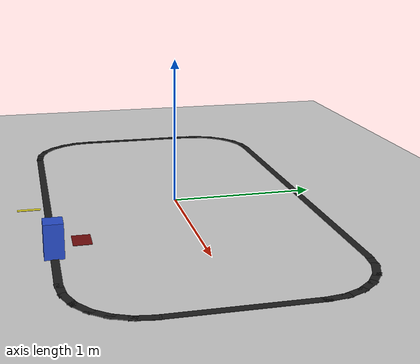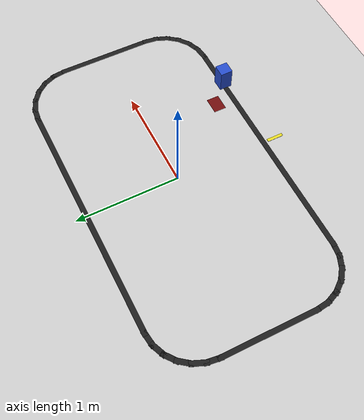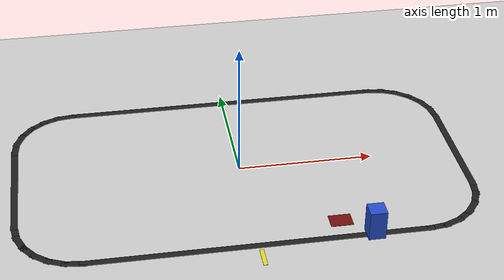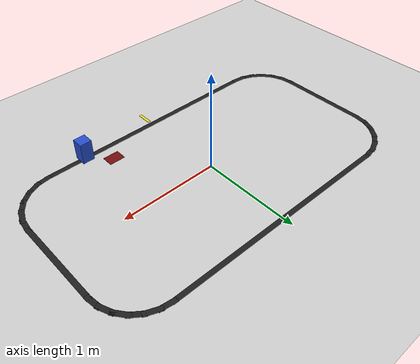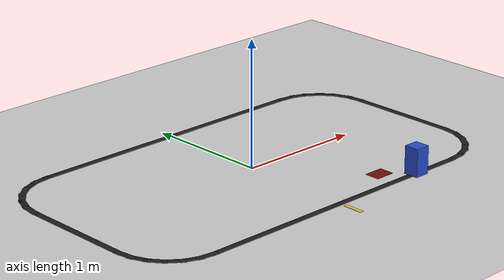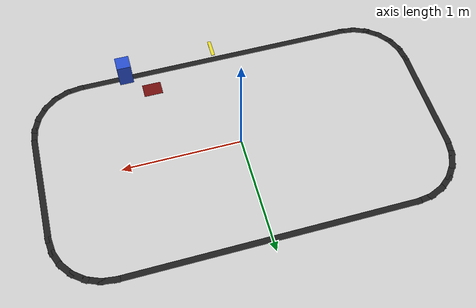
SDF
<?xml version="1.0"?>
<sdf version="1.6">
  <world name="line_following">

    <physics type="ode">
      <real_time_update_rate>1000.0</real_time_update_rate>
      <max_step_size>0.001</max_step_size>
      <real_time_factor>1</real_time_factor>
    </physics>

    <!-- 地面：Gazebo/Grey（diffuse 0.7）+ 摩擦 mu=100/mu2=50，比自建平面抓地更好，
         与黑线 FlatBlack（0.1）形成 7:1 亮度对比，D8 阈值分割余量充足 -->
    <include><uri>model://ground_plane</uri></include>
    <include><uri>model://sun</uri></include>

    <scene>
      <ambient>0.5 0.5 0.5 1</ambient>
      <shadows>false</shadows>
    </scene>

    <plugin name="gazebo_ros_state" filename="libgazebo_ros_state.so">
      <ros><namespace>/gazebo</namespace></ros>
    </plugin>
    <plugin name="gazebo_ros_properties" filename="libgazebo_ros_properties.so">
      <ros><namespace>/gazebo</namespace></ros>
    </plugin>

    <!-- ============ 巡线黑线：一个 static model、一个 link、28 个 visual ============ -->
    <model name="line_track">
      <static>true</static>
      <link name="line">
        <visual name="seg_00">
          <pose>0.0000 -0.9000 0.0015 0 0 0.000000</pose>
          <geometry><box><size>2.4500 0.050 0.0030</size></box></geometry>
          <material><script>
            <uri>file://media/materials/scripts/gazebo.material</uri><name>Gazebo/FlatBlack</name>
          </script></material>
        </visual>
        <visual name="seg_01">
          <pose>1.2582 -0.8923 0.0015 0 0 0.130900</pose>
          <geometry><box><size>0.1675 0.050 0.0030</size></box></geometry>
          <material><script>
            <uri>file://media/materials/scripts/gazebo.material</uri><name>Gazebo/FlatBlack</name>
          </script></material>
        </visual>
        <visual name="seg_02">
          <pose>1.3707 -0.8622 0.0015 0 0 0.392699</pose>
          <geometry><box><size>0.1675 0.050 0.0030</size></box></geometry>
          <material><script>
            <uri>file://media/materials/scripts/gazebo.material</uri><name>Gazebo/FlatBlack</name>
          </script></material>
        </visual>
        <visual name="seg_03">
          <pose>1.4716 -0.8040 0.0015 0 0 0.654498</pose>
          <geometry><box><size>0.1675 0.050 0.0030</size></box></geometry>
          <material><script>
            <uri>file://media/materials/scripts/gazebo.material</uri><name>Gazebo/FlatBlack</name>
          </script></material>
        </visual>
        <visual name="seg_04">
          <pose>1.5540 -0.7216 0.0015 0 0 0.916298</pose>
          <geometry><box><size>0.1675 0.050 0.0030</size></box></geometry>
          <material><script>
            <uri>file://media/materials/scripts/gazebo.material</uri><name>Gazebo/FlatBlack</name>
          </script></material>
        </visual>
        <visual name="seg_05">
          <pose>1.6122 -0.6207 0.0015 0 0 1.178097</pose>
          <geometry><box><size>0.1675 0.050 0.0030</size></box></geometry>
          <material><script>
            <uri>file://media/materials/scripts/gazebo.material</uri><name>Gazebo/FlatBlack</name>
          </script></material>
        </visual>
        <visual name="seg_06">
          <pose>1.6423 -0.5082 0.0015 0 0 1.439897</pose>
          <geometry><box><size>0.1675 0.050 0.0030</size></box></geometry>
          <material><script>
            <uri>file://media/materials/scripts/gazebo.material</uri><name>Gazebo/FlatBlack</name>
          </script></material>
        </visual>
        <visual name="seg_07">
          <pose>1.6500 0.0000 0.0015 0 0 1.570796</pose>
          <geometry><box><size>0.9500 0.050 0.0030</size></box></geometry>
          <material><script>
            <uri>file://media/materials/scripts/gazebo.material</uri><name>Gazebo/FlatBlack</name>
          </script></material>
        </visual>
        <visual name="seg_08">
          <pose>1.6423 0.5082 0.0015 0 0 1.701696</pose>
          <geometry><box><size>0.1675 0.050 0.0030</size></box></geometry>
          <material><script>
            <uri>file://media/materials/scripts/gazebo.material</uri><name>Gazebo/FlatBlack</name>
          </script></material>
        </visual>
        <visual name="seg_09">
          <pose>1.6122 0.6207 0.0015 0 0 1.963495</pose>
          <geometry><box><size>0.1675 0.050 0.0030</size></box></geometry>
          <material><script>
            <uri>file://media/materials/scripts/gazebo.material</uri><name>Gazebo/FlatBlack</name>
          </script></material>
        </visual>
        <visual name="seg_10">
          <pose>1.5540 0.7216 0.0015 0 0 2.225295</pose>
          <geometry><box><size>0.1675 0.050 0.0030</size></box></geometry>
          <material><script>
            <uri>file://media/materials/scripts/gazebo.material</uri><name>Gazebo/FlatBlack</name>
          </script></material>
        </visual>
        <visual name="seg_11">
          <pose>1.4716 0.8040 0.0015 0 0 2.487094</pose>
          <geometry><box><size>0.1675 0.050 0.0030</size></box></geometry>
          <material><script>
            <uri>file://media/materials/scripts/gazebo.material</uri><name>Gazebo/FlatBlack</name>
          </script></material>
        </visual>
        <visual name="seg_12">
          <pose>1.3707 0.8622 0.0015 0 0 2.748894</pose>
          <geometry><box><size>0.1675 0.050 0.0030</size></box></geometry>
          <material><script>
            <uri>file://media/materials/scripts/gazebo.material</uri><name>Gazebo/FlatBlack</name>
          </script></material>
        </visual>
        <visual name="seg_13">
          <pose>1.2582 0.8923 0.0015 0 0 3.010693</pose>
          <geometry><box><size>0.1675 0.050 0.0030</size></box></geometry>
          <material><script>
            <uri>file://media/materials/scripts/gazebo.material</uri><name>Gazebo/FlatBlack</name>
          </script></material>
        </visual>
        <visual name="seg_14">
          <pose>0.0000 0.9000 0.0015 0 0 3.141593</pose>
          <geometry><box><size>2.4500 0.050 0.0030</size></box></geometry>
          <material><script>
            <uri>file://media/materials/scripts/gazebo.material</uri><name>Gazebo/FlatBlack</name>
          </script></material>
        </visual>
        <visual name="seg_15">
          <pose>-1.2582 0.8923 0.0015 0 0 -3.010693</pose>
          <geometry><box><size>0.1675 0.050 0.0030</size></box></geometry>
          <material><script>
            <uri>file://media/materials/scripts/gazebo.material</uri><name>Gazebo/FlatBlack</name>
          </script></material>
        </visual>
        <visual name="seg_16">
          <pose>-1.3707 0.8622 0.0015 0 0 -2.748894</pose>
          <geometry><box><size>0.1675 0.050 0.0030</size></box></geometry>
          <material><script>
            <uri>file://media/materials/scripts/gazebo.material</uri><name>Gazebo/FlatBlack</name>
          </script></material>
        </visual>
        <visual name="seg_17">
          <pose>-1.4716 0.8040 0.0015 0 0 -2.487094</pose>
          <geometry><box><size>0.1675 0.050 0.0030</size></box></geometry>
          <material><script>
            <uri>file://media/materials/scripts/gazebo.material</uri><name>Gazebo/FlatBlack</name>
          </script></material>
        </visual>
        <visual name="seg_18">
          <pose>-1.5540 0.7216 0.0015 0 0 -2.225295</pose>
          <geometry><box><size>0.1675 0.050 0.0030</size></box></geometry>
          <material><script>
            <uri>file://media/materials/scripts/gazebo.material</uri><name>Gazebo/FlatBlack</name>
          </script></material>
        </visual>
        <visual name="seg_19">
          <pose>-1.6122 0.6207 0.0015 0 0 -1.963495</pose>
          <geometry><box><size>0.1675 0.050 0.0030</size></box></geometry>
          <material><script>
            <uri>file://media/materials/scripts/gazebo.material</uri><name>Gazebo/FlatBlack</name>
          </script></material>
        </visual>
        <visual name="seg_20">
          <pose>-1.6423 0.5082 0.0015 0 0 -1.701696</pose>
          <geometry><box><size>0.1675 0.050 0.0030</size></box></geometry>
          <material><script>
            <uri>file://media/materials/scripts/gazebo.material</uri><name>Gazebo/FlatBlack</name>
          </script></material>
        </visual>
        <visual name="seg_21">
          <pose>-1.6500 0.0000 0.0015 0 0 -1.570796</pose>
          <geometry><box><size>0.9500 0.050 0.0030</size></box></geometry>
          <material><script>
            <uri>file://media/materials/scripts/gazebo.material</uri><name>Gazebo/FlatBlack</name>
          </script></material>
        </visual>
        <visual name="seg_22">
          <pose>-1.6423 -0.5082 0.0015 0 0 -1.439897</pose>
          <geometry><box><size>0.1675 0.050 0.0030</size></box></geometry>
          <material><script>
            <uri>file://media/materials/scripts/gazebo.material</uri><name>Gazebo/FlatBlack</name>
          </script></material>
        </visual>
        <visual name="seg_23">
          <pose>-1.6122 -0.6207 0.0015 0 0 -1.178097</pose>
          <geometry><box><size>0.1675 0.050 0.0030</size></box></geometry>
          <material><script>
            <uri>file://media/materials/scripts/gazebo.material</uri><name>Gazebo/FlatBlack</name>
          </script></material>
        </visual>
        <visual name="seg_24">
          <pose>-1.5540 -0.7216 0.0015 0 0 -0.916298</pose>
          <geometry><box><size>0.1675 0.050 0.0030</size></box></geometry>
          <material><script>
            <uri>file://media/materials/scripts/gazebo.material</uri><name>Gazebo/FlatBlack</name>
          </script></material>
        </visual>
        <visual name="seg_25">
          <pose>-1.4716 -0.8040 0.0015 0 0 -0.654498</pose>
          <geometry><box><size>0.1675 0.050 0.0030</size></box></geometry>
          <material><script>
            <uri>file://media/materials/scripts/gazebo.material</uri><name>Gazebo/FlatBlack</name>
          </script></material>
        </visual>
        <visual name="seg_26">
          <pose>-1.3707 -0.8622 0.0015 0 0 -0.392699</pose>
          <geometry><box><size>0.1675 0.050 0.0030</size></box></geometry>
          <material><script>
            <uri>file://media/materials/scripts/gazebo.material</uri><name>Gazebo/FlatBlack</name>
          </script></material>
        </visual>
        <visual name="seg_27">
          <pose>-1.2582 -0.8923 0.0015 0 0 -0.130900</pose>
          <geometry><box><size>0.1675 0.050 0.0030</size></box></geometry>
          <material><script>
            <uri>file://media/materials/scripts/gazebo.material</uri><name>Gazebo/FlatBlack</name>
          </script></material>
        </visual>
      </link>
    </model>

    <!-- 起跑参考块（黄色，中心在黑线外侧 0.125 m，即 y=-1.025，
         与黑线不相连：D9 做线中心提取时它不会被当成线的一部分） -->
    <model name="start_pad">
      <static>true</static>
      <link name="pad">
        <visual name="v">
          <pose>0.0 -1.025 0.0015 0 0 0</pose>
          <geometry><box><size>0.03 0.16 0.003</size></box></geometry>
          <material><script>
            <uri>file://media/materials/scripts/gazebo.material</uri><name>Gazebo/Yellow</name>
          </script></material>
        </visual>
      </link>
    </model>

    <!-- D8 干扰色块：故意放在黑线左侧 18 cm、车开不到的地方 -->
    <model name="floor_stain">
      <static>true</static>
      <link name="stain">
        <visual name="v">
          <pose>0.60 -0.72 0.0015 0 0 0</pose>
          <geometry><box><size>0.16 0.12 0.003</size></box></geometry>
          <material>
            <lighting>true</lighting>
            <ambient>0.20 0.02 0.02 1</ambient>
            <diffuse>0.45 0.05 0.05 1</diffuse>
            <emissive>0 0 0 1</emissive>
          </material>
        </visual>
      </link>
    </model>
    <!-- D11 障碍 0：压在黑线上（靠近时会完全遮住线 -> 逼出丢线恢复行为） -->
    <model name="obstacle_00">
      <static>true</static>
      <pose>0.800 -0.900 0.110 0 0 0.000</pose>
      <link name="body">
        <visual name="v">
          <geometry><box><size>0.120 0.120 0.220</size></box></geometry>
          <material><script>
            <uri>file://media/materials/scripts/gazebo.material</uri><name>Gazebo/Blue</name>
          </script></material>
        </visual>
        <collision name="c">
          <geometry><box><size>0.120 0.120 0.220</size></box></geometry>
        </collision>
      </link>
    </model>
  </world>
</sdf>
